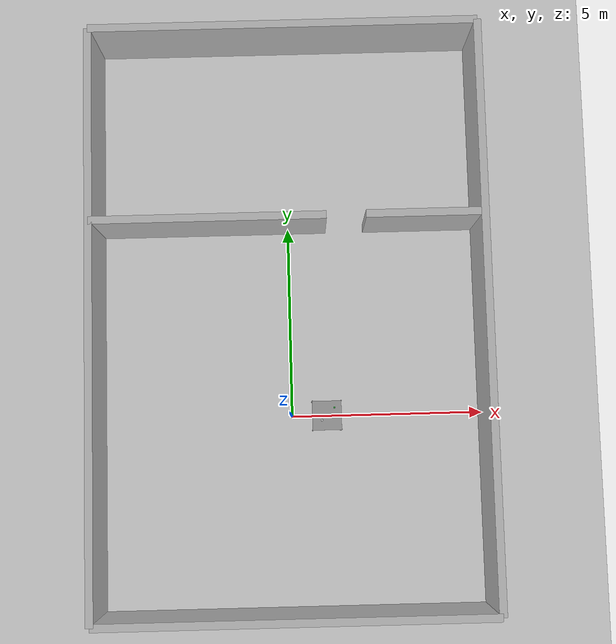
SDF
<sdf version="1.4">
 <world name="default">
  <physics type="ode">
   <gravity>0 0 -9.81</gravity>
   <ode>
    <solver><type>quick</type><iters>20</iters><sor>1.0</sor></solver>
    <constraints>
     <cfm>0.0</cfm>
     <erp>0.2</erp>
     <contact_max_correcting_vel>100.0</contact_max_correcting_vel>
     <contact_surface_layer>0.0</contact_surface_layer>
    </constraints>
   </ode>
   <real_time_update_rate>1000</real_time_update_rate>
   <max_step_size>0.001</max_step_size>
  </physics>
  <include><uri>model://ideal_sun</uri></include>
  <include><uri>model://ground_plane</uri></include>
  <model name="wall_1_model">
   <pose>0 -5 1 0 0 0</pose>
   <static>true</static>
   <link name="wall_1_body">
    <inertial>
     <mass>1.0</mass>
     <inertia><ixx>1.0</ixx><ixy>0.0</ixy><ixz>0.0</ixz><iyy>1.0</iyy><iyz>0.0</iyz><izz>1.0</izz></inertia>
    </inertial>
    <collision name="collision"><geometry><box><size>10 0.2 2</size></box></geometry></collision>
    <visual name="visual"><geometry><box><size>10 0.2 2</size></box></geometry></visual>
   </link>
  </model>
  <model name="wall_2_model">
   <pose>0 10 1 0 0 0</pose>
   <static>true</static>
   <link name="wall_2_body">
    <inertial>
     <mass>1.0</mass>
     <inertia><ixx>1.0</ixx><ixy>0.0</ixy><ixz>0.0</ixz><iyy>1.0</iyy><iyz>0.0</iyz><izz>1.0</izz></inertia>
    </inertial>
    <collision name="collision"><geometry><box><size>10 0.2 2</size></box></geometry></collision>
    <visual name="visual"><geometry><box><size>10 0.2 2</size></box></geometry></visual>
   </link>
  </model>
  <model name="wall_3_model">
   <pose>-5 2.5 1 0 0 0</pose>
   <static>true</static>
   <link name="wall_3_body">
    <inertial>
     <mass>1.0</mass>
     <inertia><ixx>1.0</ixx><ixy>0.0</ixy><ixz>0.0</ixz><iyy>1.0</iyy><iyz>0.0</iyz><izz>1.0</izz></inertia>
    </inertial>
    <collision name="collision"><geometry><box><size>0.2 15 2</size></box></geometry></collision>
    <visual name="visual"><geometry><box><size>0.2 15 2</size></box></geometry></visual>
   </link>
  </model>
  <model name="wall_4_model">
   <pose>5 2.5 1 0 0 0</pose>
   <static>true</static>
   <link name="wall_4_body">
    <inertial>
     <mass>1.0</mass>
     <inertia><ixx>1.0</ixx><ixy>0.0</ixy><ixz>0.0</ixz><iyy>1.0</iyy><iyz>0.0</iyz><izz>1.0</izz></inertia>
    </inertial>
    <collision name="collision"><geometry><box><size>0.2 15 2</size></box></geometry></collision>
    <visual name="visual"><geometry><box><size>0.2 15 2</size></box></geometry></visual>
   </link>
  </model>
  <model name="wall_5_model">
   <pose>-2 5 1 0 0 0</pose>
   <static>true</static>
   <link name="wall_5_body">
    <inertial>
     <mass>1.0</mass>
     <inertia><ixx>1.0</ixx><ixy>0.0</ixy><ixz>0.0</ixz><iyy>1.0</iyy><iyz>0.0</iyz><izz>1.0</izz></inertia>
    </inertial>
    <collision name="collision"><geometry><box><size>6 0.2 2</size></box></geometry></collision>
    <visual name="visual"><geometry><box><size>6 0.2 2</size></box></geometry></visual>
   </link>
  </model>
  <model name="wall_6_model">
   <pose>3.5 5 1 0 0 0</pose>
   <static>true</static>
   <link name="wall_6_body">
    <inertial>
     <mass>1.0</mass>
     <inertia><ixx>1.0</ixx><ixy>0.0</ixy><ixz>0.0</ixz><iyy>1.0</iyy><iyz>0.0</iyz><izz>1.0</izz></inertia>
    </inertial>
    <collision name="collision"><geometry><box><size>3 0.2 2</size></box></geometry></collision>
    <visual name="visual"><geometry><box><size>3 0.2 2</size></box></geometry></visual>
   </link>
  </model>
  <include><uri>model://macrolink_table</uri><pose>0.9 0.0 0 0 0 0</pose></include>
  <include><uri>model://coke_can_slim</uri><pose>0.77 -0.12 0.75 0 0 -1.57</pose><static>0</static></include>
  <include><uri>model://green_rectangle</uri><pose>1.1 0.2 0.8 0 0 -1.57</pose><static>0</static></include>
 </world>
</sdf>

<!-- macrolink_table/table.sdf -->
<sdf version='1.3'>
<model name='table'>
      <static>1</static>
      <link name='link'>
        <collision name='surface'>
          <pose>0.000000 0.000000 0.7200000 0.000000 0.000000 0.000000</pose>
          <geometry>
            <box>
              <size>0.750000 0.750000 0.040000</size>
            </box>
          </geometry>
          <surface>
            <bounce/>
            <friction>
              <ode/>
            </friction>
            <contact>
              <ode/>
            </contact>
          </surface>
        </collision>
        <visual name='visual1'>
          <pose>0.000000 0.000000 0.7200000 0.000000 0.000000 0.000000</pose>
          <geometry>
            <box>
              <size>0.750000 0.750000 0.040000</size>
            </box>
          </geometry>
          <material>
            <script>
              <uri>file://media/materials/scripts/gazebo.material</uri>
              <name>Gazebo/Grey</name>
            </script>
          </material>
        </visual>
        <collision name='front_left_leg'>
          <pose>0.370000 0.370000 0.3600000 0.000000 0.000000 0.000000</pose>
          <geometry>
            <cylinder>
              <radius>0.020000</radius>
              <length>0.7200000</length>
            </cylinder>
          </geometry>
          <surface>
            <bounce/>
            <friction>
              <ode/>
            </friction>
            <contact>
              <ode/>
            </contact>
          </surface>
        </collision>
        <visual name='front_left_leg'>
          <pose>0.370000 0.370000 0.3600000 0.000000 0.000000 0.000000</pose>
          <geometry>
            <cylinder>
              <radius>0.020000</radius>
              <length>0.7200000</length>
            </cylinder>
          </geometry>
          <material>
            <script>
              <uri>file://media/materials/scripts/gazebo.material</uri>
              <name>Gazebo/Grey</name>
            </script>
          </material>
        </visual>
        <collision name='front_right_leg'>
          <pose>0.370000 -0.370000 0.3600000 0.000000 0.000000 0.000000</pose>
          <geometry>
            <cylinder>
              <radius>0.020000</radius>
              <length>0.72000000</length>
            </cylinder>
          </geometry>
          <surface>
            <bounce/>
            <friction>
              <ode/>
            </friction>
            <contact>
              <ode/>
            </contact>
          </surface>
        </collision>
        <visual name='front_right_leg'>
          <pose>0.370000 -0.370000 0.3600000 0.000000 0.000000 0.000000</pose>
          <geometry>
            <cylinder>
              <radius>0.020000</radius>
              <length>0.7200000</length>
            </cylinder>
          </geometry>
          <material>
            <script>
              <uri>file://media/materials/scripts/gazebo.material</uri>
              <name>Gazebo/Grey</name>
            </script>
          </material>
        </visual>
        <collision name='back_right_leg'>
          <pose>-0.370000 -0.370000 0.3600000 0.000000 0.000000 0.000000</pose>
          <geometry>
            <cylinder>
              <radius>0.020000</radius>
              <length>0.72000000</length>
            </cylinder>
          </geometry>
          <surface>
            <bounce/>
            <friction>
              <ode/>
            </friction>
            <contact>
              <ode/>
            </contact>
          </surface>
        </collision>
        <visual name='back_right_leg'>
          <pose>-0.370000 -0.370000 0.3600000 0.000000 0.000000 0.000000</pose>
          <geometry>
            <cylinder>
              <radius>0.020000</radius>
              <length>0.7200000</length>
            </cylinder>
          </geometry>
          <material>
            <script>
              <uri>file://media/materials/scripts/gazebo.material</uri>
              <name>Gazebo/Grey</name>
            </script>
          </material>
        </visual>
        <collision name='back_left_leg'>
          <pose>-0.370000 0.370000 0.3600000 0.000000 0.000000 0.000000</pose>
          <geometry>
            <cylinder>
              <radius>0.020000</radius>
              <length>0.7200000</length>
            </cylinder>
          </geometry>
          <surface>
            <bounce/>
            <friction>
              <ode/>
            </friction>
            <contact>
              <ode/>
            </contact>
          </surface>
        </collision>
        <visual name='back_left_leg'>
          <pose>-0.370000 0.370000 0.3600000 0.000000 0.000000 0.000000</pose>
          <geometry>
            <cylinder>
              <radius>0.020000</radius>
              <length>0.7200000</length>
            </cylinder>
          </geometry>
          <material>
            <script>
              <uri>file://media/materials/scripts/gazebo.material</uri>
              <name>Gazebo/Grey</name>
            </script>
          </material>
        </visual>
        <velocity_decay>
          <linear>0.000000</linear>
          <angular>0.000000</angular>
        </velocity_decay>
        <self_collide>0</self_collide>
        <kinematic>0</kinematic>
        <gravity>1</gravity>
      </link>
    </model>
</sdf>

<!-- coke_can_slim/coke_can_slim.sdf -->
<sdf version='1.4'>
  <model name="coke_can_slim">
    <!-- Without this, sometimes collisions are not reported-->
      <allow_auto_disable>0</allow_auto_disable>
      <static>0</static>
      <link name='link'>
        <inertial>
          <mass>0.15</mass>
          <inertia>
            <ixx>2079.98</ixx>
            <ixy>0.000000</ixy>
            <ixz>0.000000</ixz>
            <iyy>2079.98</iyy>
            <iyz>0.000000</iyz>
            <izz>419.21</izz>
          </inertia>
        </inertial>
        <collision name='collision'>
          <geometry>
            <cylinder>
              <radius>0.029</radius>
              <length>0.15</length>
            </cylinder>
          </geometry>
          <surface>
            <bounce/>
            <friction>
              <ode/>
            </friction>
            <contact>
              <ode/>
            </contact>
          </surface>
        </collision>
        <visual name='visual'>
          <geometry>
            <cylinder>
              <radius>0.029</radius>
              <length>0.15</length>
            </cylinder>
          </geometry>
          <material>
            <script>
              <uri>model://coke_can_slim/material/scripts</uri>
              <uri>model://coke_can_slim/material/textures</uri>
              <name>Custom/coke_can_slim</name>
            </script>
          </material>
        </visual>
        <velocity_decay>
          <linear>0.000000</linear>
          <angular>0.000000</angular>
        </velocity_decay>
        <self_collide>0</self_collide>
        <kinematic>0</kinematic>
        <gravity>1</gravity>
      </link>
  </model>
</sdf>

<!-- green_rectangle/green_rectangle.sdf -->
<sdf version='1.4'>
  <model name="green_rectangle">
      <static>0</static>
      <link name='link'>
        <inertial>
          <mass>0.25</mass>
          <inertia>
            <ixx>0.000041667</ixx>
            <ixy>0.000000</ixy>
            <ixz>0.000000</ixz>
            <iyy>0.000041667</iyy>
            <iyz>0.000000</iyz>
            <izz>0.000041667</izz>
          </inertia>
        </inertial>
        <visual name='visual'>
          <geometry>
            <box>
              <size>0.040 0.040 0.140</size>
            </box>
          </geometry>
          <material>
            <script>
              <uri>file://media/materials/scripts/gazebo.material</uri>
              <name>Gazebo/Green</name>
            </script>
          </material>
        </visual>
        <collision name='collision'>
          <geometry>
            <box>
              <size>0.04 0.04 0.140</size>
            </box>
          </geometry>
          <surface>
            <friction>
              <ode>
                <mu>60.0</mu>
                <mu2>60.0</mu2>
              </ode>
            </friction>
            <contact>
              <ode>
                <kp>1000000.0</kp>
                <kd>100.0</kd>
                <max_vel>1.0</max_vel>
                <min_depth>0.0025</min_depth>
              </ode>
            </contact>
          </surface>
        </collision>
        <velocity_decay>
          <linear>0.000000</linear>
          <angular>0.000000</angular>
        </velocity_decay>
        <self_collide>0</self_collide>
        <kinematic>0</kinematic>
        <gravity>1</gravity>
      </link>
  </model>
</sdf>
